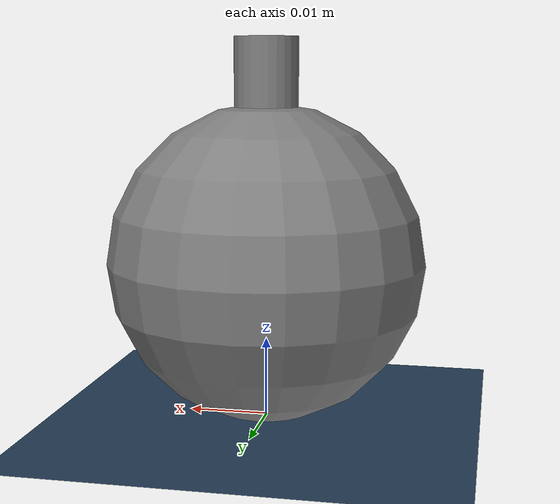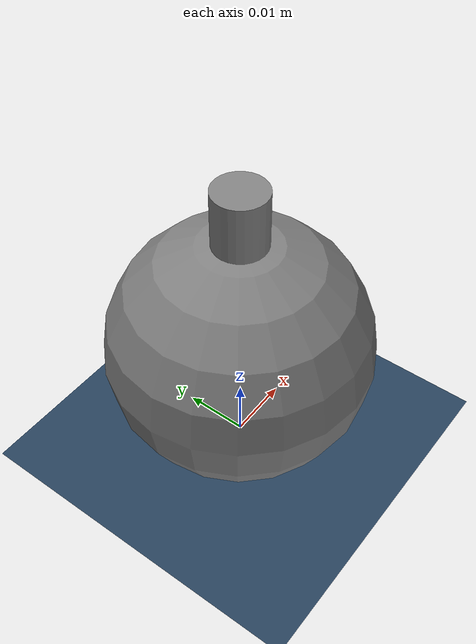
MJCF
<mujoco model="tippe-top">

    <option integrator="RK4" timestep="0.002"/>

    <asset>
        <texture name="grid" type="2d" builtin="checker" rgb1=".1 .2 .3"
        rgb2=".2 .3 .4" width="300" height="300"/>
        <material name="grid" texture="grid" texrepeat="8 8" reflectance=".2"/>
    </asset>

    <worldbody>
        <geom size="2 2 .01" type="plane" material="grid"
         zaxis="-0.1 0 1" friction="0.7"/>
        <light pos="0 0 .6"/>
        <camera name="closeup" pos="0 -.1 .07" xyaxes="1 0 0 0 1 2"/>

        <body name="top" pos="0 0 .02">
            <freejoint/>
            <geom name="ball" type="sphere" size=".02" />
            <geom name="stem" type="cylinder" pos="0 0 .02" size="0.004 .008"/>
            <geom name="ballast" type="box" size=".023 .023 0.005"  pos="0 0 -.015"
            contype="0" conaffinity="0" group="3"/>
        </body>

    </worldbody>

  <keyframe>
    <key name="spinning" qpos="0 0 0.02 1 0 0 0" qvel="0 0 0 0 1 500" />
  </keyframe>

</mujoco>
